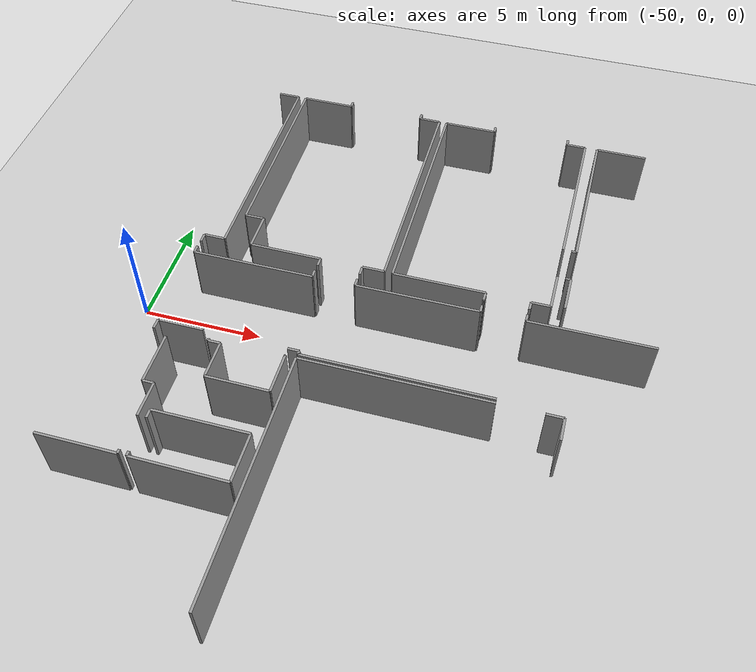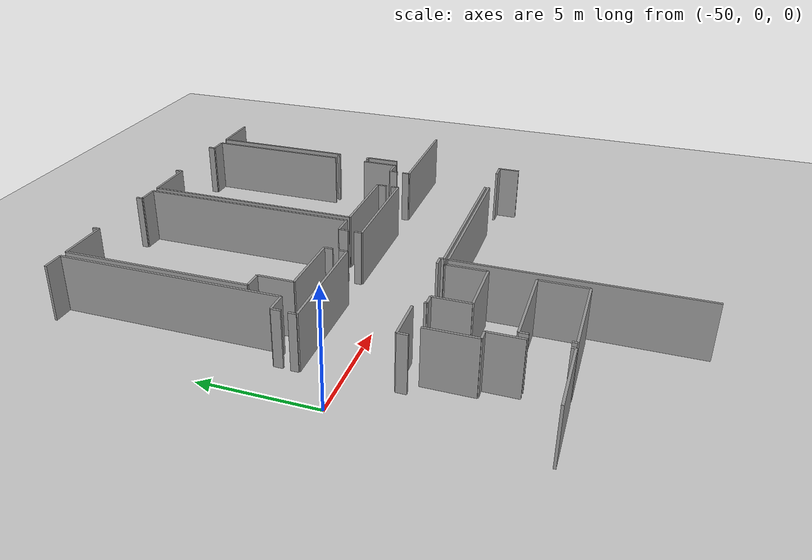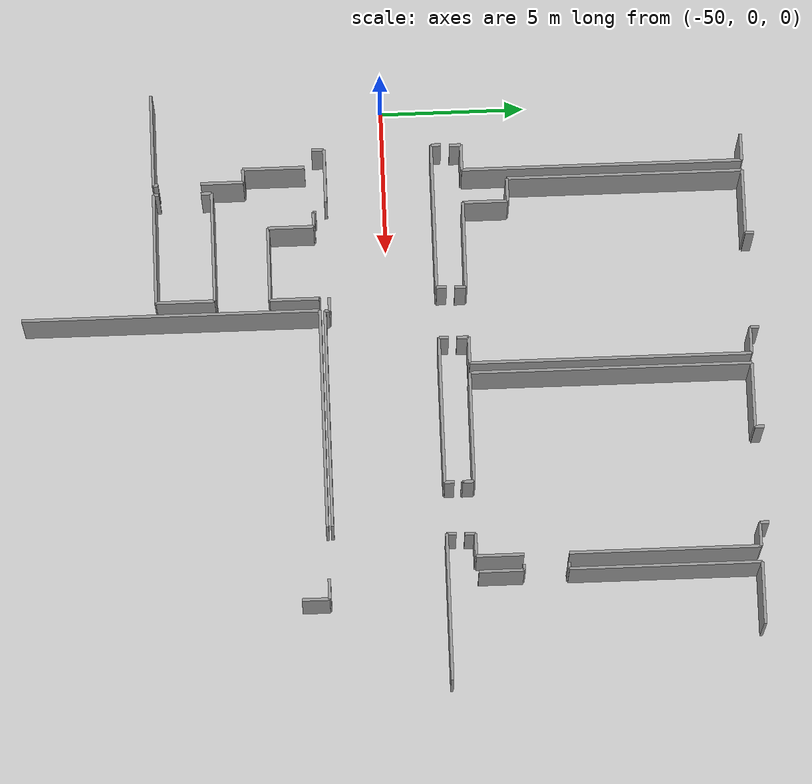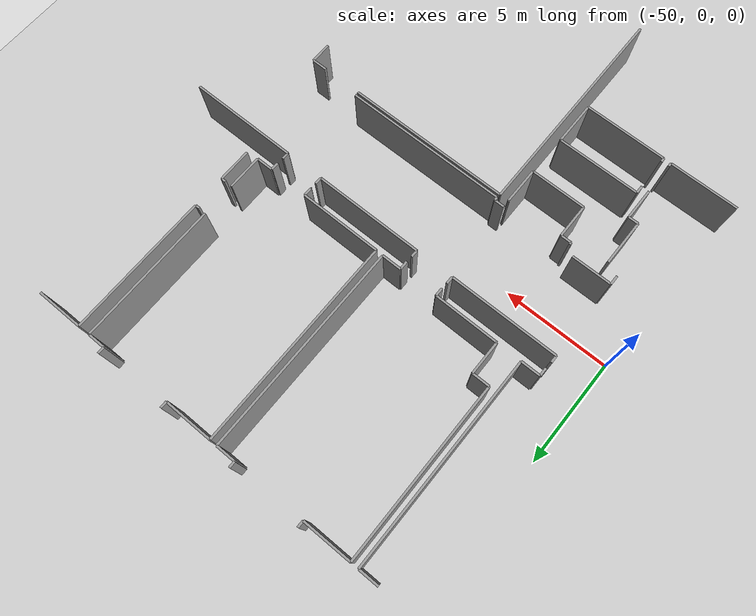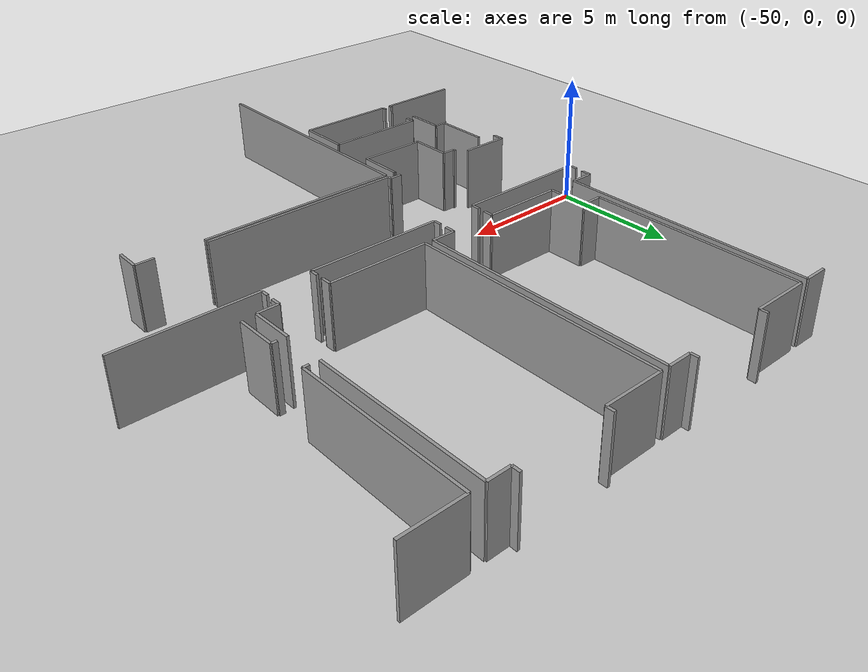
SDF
<sdf version="1.6">
 <world name="default">
  <model name="ground_plane">
   <static>1</static>
   <link name="link">
    <collision name="collision">
     <geometry><plane><normal>0 0 1</normal><size>100 100</size></plane></geometry>
     <surface><friction><ode><mu>100</mu><mu2>50</mu2></ode></friction></surface>
    </collision>
    <visual name="visual">
     <cast_shadows>0</cast_shadows>
     <geometry><plane><normal>0 0 1</normal><size>100 100</size></plane></geometry>
     <material>
      <script><uri>file://media/materials/scripts/gazebo.material</uri><name>Gazebo/Grey</name></script>
     </material>
    </visual>
   </link>
  </model>
  <model name="0510032198_A_40_1_106">
   <static>1</static>
   <link name="Wall_26">
    <collision name="Wall_26_Collision">
     <geometry><box><size>0.918954630347 0.1 2.5</size></box></geometry>
     <pose>0.459477315174 0 1.25 0 0 0</pose>
    </collision>
    <visual name="Wall_26_Visual">
     <pose>0.459477315174 0 1.25 0 0 0</pose>
     <geometry><box><size>0.918954630347 0.1 2.5</size></box></geometry>
     <material>
      <script><uri>file://media/materials/scripts/gazebo.material</uri><name>Gazebo/Grey</name></script>
      <ambient>1 1 1 1</ambient>
     </material>
    </visual>
    <pose>19.4164580925 -0.310892019972 0 0 0 0.0</pose>
   </link>
   <link name="Wall_27">
    <collision name="Wall_27_Collision">
     <geometry><box><size>9.65836181377 0.1 2.5</size></box></geometry>
     <pose>4.82918090688 0 1.25 0 0 0</pose>
    </collision>
    <visual name="Wall_27_Visual">
     <pose>4.82918090688 0 1.25 0 0 0</pose>
     <geometry><box><size>9.65836181377 0.1 2.5</size></box></geometry>
     <material>
      <script><uri>file://media/materials/scripts/gazebo.material</uri><name>Gazebo/Grey</name></script>
      <ambient>1 1 1 1</ambient>
     </material>
    </visual>
    <pose>20.3354127228 -0.310892019972 0 0 0 -1.57079632679</pose>
   </link>
   <link name="Wall_28">
    <collision name="Wall_28_Collision">
     <geometry><box><size>0.886810911078 0.1 2.5</size></box></geometry>
     <pose>0.443405455539 0 1.25 0 0 0</pose>
    </collision>
    <visual name="Wall_28_Visual">
     <pose>0.443405455539 0 1.25 0 0 0</pose>
     <geometry><box><size>0.886810911078 0.1 2.5</size></box></geometry>
     <material>
      <script><uri>file://media/materials/scripts/gazebo.material</uri><name>Gazebo/Grey</name></script>
      <ambient>1 1 1 1</ambient>
     </material>
    </visual>
    <pose>20.3354127228 -9.96925383374 0 0 0 3.14159265359</pose>
   </link>
   <link name="Wall_29">
    <collision name="Wall_29_Collision">
     <geometry><box><size>0.390044340546 0.1 2.5</size></box></geometry>
     <pose>0.195022170273 0 1.25 0 0 0</pose>
    </collision>
    <visual name="Wall_29_Visual">
     <pose>0.195022170273 0 1.25 0 0 0</pose>
     <geometry><box><size>0.390044340546 0.1 2.5</size></box></geometry>
     <material>
      <script><uri>file://media/materials/scripts/gazebo.material</uri><name>Gazebo/Grey</name></script>
      <ambient>1 1 1 1</ambient>
     </material>
    </visual>
    <pose>19.4486018117 -9.96925383374 0 0 0 -1.57079632679</pose>
   </link>
   <link name="Wall_32">
    <collision name="Wall_32_Collision">
     <geometry><box><size>1.54543953042 0.1 2.5</size></box></geometry>
     <pose>0.772719765211 0 1.25 0 0 0</pose>
    </collision>
    <visual name="Wall_32_Visual">
     <pose>0.772719765211 0 1.25 0 0 0</pose>
     <geometry><box><size>1.54543953042 0.1 2.5</size></box></geometry>
     <material>
      <script><uri>file://media/materials/scripts/gazebo.material</uri><name>Gazebo/Grey</name></script>
      <ambient>1 1 1 1</ambient>
     </material>
    </visual>
    <pose>21.4966522253 -9.9762415988 0 0 0 1.57079632679</pose>
   </link>
   <link name="Wall_33">
    <collision name="Wall_33_Collision">
     <geometry><box><size>0.802068378457 0.1 2.5</size></box></geometry>
     <pose>0.401034189229 0 1.25 0 0 0</pose>
    </collision>
    <visual name="Wall_33_Visual">
     <pose>0.401034189229 0 1.25 0 0 0</pose>
     <geometry><box><size>0.802068378457 0.1 2.5</size></box></geometry>
     <material>
      <script><uri>file://media/materials/scripts/gazebo.material</uri><name>Gazebo/Grey</name></script>
      <ambient>1 1 1 1</ambient>
     </material>
    </visual>
    <pose>21.4966522253 -8.43080206838 0 0 0 3.14159265359</pose>
   </link>
   <link name="Wall_34">
    <collision name="Wall_34_Collision">
     <geometry><box><size>8.1174960932 0.1 2.5</size></box></geometry>
     <pose>4.0587480466 0 1.25 0 0 0</pose>
    </collision>
    <visual name="Wall_34_Visual">
     <pose>4.0587480466 0 1.25 0 0 0</pose>
     <geometry><box><size>8.1174960932 0.1 2.5</size></box></geometry>
     <material>
      <script><uri>file://media/materials/scripts/gazebo.material</uri><name>Gazebo/Grey</name></script>
      <ambient>1 1 1 1</ambient>
     </material>
    </visual>
    <pose>20.6945838468 -8.43080206838 0 0 0 1.57079632679</pose>
   </link>
   <link name="Wall_35">
    <collision name="Wall_35_Collision">
     <geometry><box><size>2.23036755644 0.1 2.5</size></box></geometry>
     <pose>1.11518377822 0 1.25 0 0 0</pose>
    </collision>
    <visual name="Wall_35_Visual">
     <pose>1.11518377822 0 1.25 0 0 0</pose>
     <geometry><box><size>2.23036755644 0.1 2.5</size></box></geometry>
     <material>
      <script><uri>file://media/materials/scripts/gazebo.material</uri><name>Gazebo/Grey</name></script>
      <ambient>1 1 1 1</ambient>
     </material>
    </visual>
    <pose>20.6945838468 -0.313305975174 0 0 0 0.0</pose>
   </link>
   <link name="Wall_36">
    <collision name="Wall_36_Collision">
     <geometry><box><size>0.296789439581 0.1 2.5</size></box></geometry>
     <pose>0.148394719791 0 1.25 0 0 0</pose>
    </collision>
    <visual name="Wall_36_Visual">
     <pose>0.148394719791 0 1.25 0 0 0</pose>
     <geometry><box><size>0.296789439581 0.1 2.5</size></box></geometry>
     <material>
      <script><uri>file://media/materials/scripts/gazebo.material</uri><name>Gazebo/Grey</name></script>
      <ambient>1 1 1 1</ambient>
     </material>
    </visual>
    <pose>22.9249514033 -0.313305975174 0 0 0 1.57079632679</pose>
   </link>
   <link name="Wall_37">
    <collision name="Wall_37_Collision">
     <geometry><box><size>0.292977931367 0.1 2.5</size></box></geometry>
     <pose>0.146488965684 0 1.25 0 0 0</pose>
    </collision>
    <visual name="Wall_37_Visual">
     <pose>0.146488965684 0 1.25 0 0 0</pose>
     <geometry><box><size>0.292977931367 0.1 2.5</size></box></geometry>
     <material>
      <script><uri>file://media/materials/scripts/gazebo.material</uri><name>Gazebo/Grey</name></script>
      <ambient>1 1 1 1</ambient>
     </material>
    </visual>
    <pose>26.2569718838 -0.0165165355931 0 0 0 -1.57079632679</pose>
   </link>
   <link name="Wall_38">
    <collision name="Wall_38_Collision">
     <geometry><box><size>0.907520105706 0.1 2.5</size></box></geometry>
     <pose>0.453760052853 0 1.25 0 0 0</pose>
    </collision>
    <visual name="Wall_38_Visual">
     <pose>0.453760052853 0 1.25 0 0 0</pose>
     <geometry><box><size>0.907520105706 0.1 2.5</size></box></geometry>
     <material>
      <script><uri>file://media/materials/scripts/gazebo.material</uri><name>Gazebo/Grey</name></script>
      <ambient>1 1 1 1</ambient>
     </material>
    </visual>
    <pose>26.2569718838 -0.309494466961 0 0 0 0.0</pose>
   </link>
   <link name="Wall_39">
    <collision name="Wall_39_Collision">
     <geometry><box><size>9.65429620501 0.1 2.5</size></box></geometry>
     <pose>4.8271481025 0 1.25 0 0 0</pose>
    </collision>
    <visual name="Wall_39_Visual">
     <pose>4.8271481025 0 1.25 0 0 0</pose>
     <geometry><box><size>9.65429620501 0.1 2.5</size></box></geometry>
     <material>
      <script><uri>file://media/materials/scripts/gazebo.material</uri><name>Gazebo/Grey</name></script>
      <ambient>1 1 1 1</ambient>
     </material>
    </visual>
    <pose>27.1644919895 -0.309494466961 0 0 0 -1.57079632679</pose>
   </link>
   <link name="Wall_40">
    <collision name="Wall_40_Collision">
     <geometry><box><size>0.910442262003 0.1 2.5</size></box></geometry>
     <pose>0.455221131002 0 1.25 0 0 0</pose>
    </collision>
    <visual name="Wall_40_Visual">
     <pose>0.455221131002 0 1.25 0 0 0</pose>
     <geometry><box><size>0.910442262003 0.1 2.5</size></box></geometry>
     <material>
      <script><uri>file://media/materials/scripts/gazebo.material</uri><name>Gazebo/Grey</name></script>
      <ambient>1 1 1 1</ambient>
     </material>
    </visual>
    <pose>27.1644919895 -9.96379067197 0 0 0 3.14159265359</pose>
   </link>
   <link name="Wall_41">
    <collision name="Wall_41_Collision">
     <geometry><box><size>0.406433825865 0.1 2.5</size></box></geometry>
     <pose>0.203216912932 0 1.25 0 0 0</pose>
    </collision>
    <visual name="Wall_41_Visual">
     <pose>0.203216912932 0 1.25 0 0 0</pose>
     <geometry><box><size>0.406433825865 0.1 2.5</size></box></geometry>
     <material>
      <script><uri>file://media/materials/scripts/gazebo.material</uri><name>Gazebo/Grey</name></script>
      <ambient>1 1 1 1</ambient>
     </material>
    </visual>
    <pose>26.2540497275 -9.96379067197 0 0 0 -1.57079632679</pose>
   </link>
   <link name="Wall_42">
    <collision name="Wall_42_Collision">
     <geometry><box><size>0.377212262892 0.1 2.5</size></box></geometry>
     <pose>0.188606131446 0 1.25 0 0 0</pose>
    </collision>
    <visual name="Wall_42_Visual">
     <pose>0.188606131446 0 1.25 0 0 0</pose>
     <geometry><box><size>0.377212262892 0.1 2.5</size></box></geometry>
     <material>
      <script><uri>file://media/materials/scripts/gazebo.material</uri><name>Gazebo/Grey</name></script>
      <ambient>1 1 1 1</ambient>
     </material>
    </visual>
    <pose>24.4847476146 -10.3702244978 0 0 0 1.57079632679</pose>
   </link>
   <link name="Wall_43">
    <collision name="Wall_43_Collision">
     <geometry><box><size>2.98814245143 0.1 2.5</size></box></geometry>
     <pose>1.49407122572 0 1.25 0 0 0</pose>
    </collision>
    <visual name="Wall_43_Visual">
     <pose>1.49407122572 0 1.25 0 0 0</pose>
     <geometry><box><size>2.98814245143 0.1 2.5</size></box></geometry>
     <material>
      <script><uri>file://media/materials/scripts/gazebo.material</uri><name>Gazebo/Grey</name></script>
      <ambient>1 1 1 1</ambient>
     </material>
    </visual>
    <pose>24.4847476146 -9.99301223494 0 0 0 3.135980229</pose>
   </link>
   <link name="Wall_44">
    <collision name="Wall_44_Collision">
     <geometry><box><size>9.6577265624 0.1 2.5</size></box></geometry>
     <pose>4.8288632812 0 1.25 0 0 0</pose>
    </collision>
    <visual name="Wall_44_Visual">
     <pose>4.8288632812 0 1.25 0 0 0</pose>
     <geometry><box><size>9.6577265624 0.1 2.5</size></box></geometry>
     <material>
      <script><uri>file://media/materials/scripts/gazebo.material</uri><name>Gazebo/Grey</name></script>
      <ambient>1 1 1 1</ambient>
     </material>
    </visual>
    <pose>27.5029539189 -9.9762415988 0 0 0 1.57079632679</pose>
   </link>
   <link name="Wall_45">
    <collision name="Wall_45_Collision">
     <geometry><box><size>2.23900697506 0.1 2.5</size></box></geometry>
     <pose>1.11950348753 0 1.25 0 0 0</pose>
    </collision>
    <visual name="Wall_45_Visual">
     <pose>1.11950348753 0 1.25 0 0 0</pose>
     <geometry><box><size>2.23900697506 0.1 2.5</size></box></geometry>
     <material>
      <script><uri>file://media/materials/scripts/gazebo.material</uri><name>Gazebo/Grey</name></script>
      <ambient>1 1 1 1</ambient>
     </material>
    </visual>
    <pose>27.5029539189 -0.3185150364 0 0 0 0.0</pose>
   </link>
   <link name="Wall_46">
    <collision name="Wall_46_Collision">
     <geometry><box><size>0.307588712854 0.1 2.5</size></box></geometry>
     <pose>0.153794356427 0 1.25 0 0 0</pose>
    </collision>
    <visual name="Wall_46_Visual">
     <pose>0.153794356427 0 1.25 0 0 0</pose>
     <geometry><box><size>0.307588712854 0.1 2.5</size></box></geometry>
     <material>
      <script><uri>file://media/materials/scripts/gazebo.material</uri><name>Gazebo/Grey</name></script>
      <ambient>1 1 1 1</ambient>
     </material>
    </visual>
    <pose>29.7419608939 -0.3185150364 0 0 0 1.57079632679</pose>
   </link>
   <link name="Wall_47">
    <collision name="Wall_47_Collision">
     <geometry><box><size>0.308096913949 0.1 2.5</size></box></geometry>
     <pose>0.154048456974 0 1.25 0 0 0</pose>
    </collision>
    <visual name="Wall_47_Visual">
     <pose>0.154048456974 0 1.25 0 0 0</pose>
     <geometry><box><size>0.308096913949 0.1 2.5</size></box></geometry>
     <material>
      <script><uri>file://media/materials/scripts/gazebo.material</uri><name>Gazebo/Grey</name></script>
      <ambient>1 1 1 1</ambient>
     </material>
    </visual>
    <pose>33.0727108717 -0.0109263235462 0 0 0 -1.57079632679</pose>
   </link>
   <link name="Wall_48">
    <collision name="Wall_48_Collision">
     <geometry><box><size>0.811978299813 0.1 2.5</size></box></geometry>
     <pose>0.405989149907 0 1.25 0 0 0</pose>
    </collision>
    <visual name="Wall_48_Visual">
     <pose>0.405989149907 0 1.25 0 0 0</pose>
     <geometry><box><size>0.811978299813 0.1 2.5</size></box></geometry>
     <material>
      <script><uri>file://media/materials/scripts/gazebo.material</uri><name>Gazebo/Grey</name></script>
      <ambient>1 1 1 1</ambient>
     </material>
    </visual>
    <pose>33.0727108717 -0.319023237495 0 0 0 0.0</pose>
   </link>
   <link name="Wall_49">
    <collision name="Wall_49_Collision">
     <geometry><box><size>6.51615444231 0.1 2.5</size></box></geometry>
     <pose>3.25807722116 0 1.25 0 0 0</pose>
    </collision>
    <visual name="Wall_49_Visual">
     <pose>3.25807722116 0 1.25 0 0 0</pose>
     <geometry><box><size>6.51615444231 0.1 2.5</size></box></geometry>
     <material>
      <script><uri>file://media/materials/scripts/gazebo.material</uri><name>Gazebo/Grey</name></script>
      <ambient>1 1 1 1</ambient>
     </material>
    </visual>
    <pose>33.8846891715 -0.319023237495 0 0 0 -1.57079632679</pose>
   </link>
   <link name="Wall_50">
    <collision name="Wall_50_Collision">
     <geometry><box><size>1.6211614936 0.1 2.5</size></box></geometry>
     <pose>0.810580746802 0 1.25 0 0 0</pose>
    </collision>
    <visual name="Wall_50_Visual">
     <pose>0.810580746802 0 1.25 0 0 0</pose>
     <geometry><box><size>1.6211614936 0.1 2.5</size></box></geometry>
     <material>
      <script><uri>file://media/materials/scripts/gazebo.material</uri><name>Gazebo/Grey</name></script>
      <ambient>1 1 1 1</ambient>
     </material>
    </visual>
    <pose>33.8846891715 -8.38061721023 0 0 0 -1.57079632679</pose>
   </link>
   <link name="Wall_51">
    <collision name="Wall_51_Collision">
     <geometry><box><size>0.778437027532 0.1 2.5</size></box></geometry>
     <pose>0.389218513766 0 1.25 0 0 0</pose>
    </collision>
    <visual name="Wall_51_Visual">
     <pose>0.389218513766 0 1.25 0 0 0</pose>
     <geometry><box><size>0.778437027532 0.1 2.5</size></box></geometry>
     <material>
      <script><uri>file://media/materials/scripts/gazebo.material</uri><name>Gazebo/Grey</name></script>
      <ambient>1 1 1 1</ambient>
     </material>
    </visual>
    <pose>33.8846891715 -10.0017787038 0 0 0 3.14159265359</pose>
   </link>
   <link name="Wall_52">
    <collision name="Wall_52_Collision">
     <geometry><box><size>0.365015436608 0.1 2.5</size></box></geometry>
     <pose>0.182507718304 0 1.25 0 0 0</pose>
    </collision>
    <visual name="Wall_52_Visual">
     <pose>0.182507718304 0 1.25 0 0 0</pose>
     <geometry><box><size>0.365015436608 0.1 2.5</size></box></geometry>
     <material>
      <script><uri>file://media/materials/scripts/gazebo.material</uri><name>Gazebo/Grey</name></script>
      <ambient>1 1 1 1</ambient>
     </material>
    </visual>
    <pose>33.106252144 -10.0017787038 0 0 0 -1.57079632679</pose>
   </link>
   <link name="Wall_53">
    <collision name="Wall_53_Collision">
     <geometry><box><size>0.0315084679007 0.1 2.5</size></box></geometry>
     <pose>0.0157542339504 0 1.25 0 0 0</pose>
    </collision>
    <visual name="Wall_53_Visual">
     <pose>0.0157542339504 0 1.25 0 0 0</pose>
     <geometry><box><size>0.0315084679007 0.1 2.5</size></box></geometry>
     <material>
      <script><uri>file://media/materials/scripts/gazebo.material</uri><name>Gazebo/Grey</name></script>
      <ambient>1 1 1 1</ambient>
     </material>
    </visual>
    <pose>31.3260237076 -10.3667941404 0 0 0 3.14159265359</pose>
   </link>
   <link name="Wall_54">
    <collision name="Wall_54_Collision">
     <geometry><box><size>0.382675424666 0.1 2.5</size></box></geometry>
     <pose>0.191337712333 0 1.25 0 0 0</pose>
    </collision>
    <visual name="Wall_54_Visual">
     <pose>0.191337712333 0 1.25 0 0 0</pose>
     <geometry><box><size>0.382675424666 0.1 2.5</size></box></geometry>
     <material>
      <script><uri>file://media/materials/scripts/gazebo.material</uri><name>Gazebo/Grey</name></script>
      <ambient>1 1 1 1</ambient>
     </material>
    </visual>
    <pose>31.2945152397 -10.3667941404 0 0 0 1.57079632679</pose>
   </link>
   <link name="Wall_55">
    <collision name="Wall_55_Collision">
     <geometry><box><size>3.79156950332 0.1 2.5</size></box></geometry>
     <pose>1.89578475166 0 1.25 0 0 0</pose>
    </collision>
    <visual name="Wall_55_Visual">
     <pose>1.89578475166 0 1.25 0 0 0</pose>
     <geometry><box><size>3.79156950332 0.1 2.5</size></box></geometry>
     <material>
      <script><uri>file://media/materials/scripts/gazebo.material</uri><name>Gazebo/Grey</name></script>
      <ambient>1 1 1 1</ambient>
     </material>
    </visual>
    <pose>31.2945152397 -9.98411871578 0 0 0 3.13951511746</pose>
   </link>
   <link name="Wall_56">
    <collision name="Wall_56_Collision">
     <geometry><box><size>1.53705421235 0.1 2.5</size></box></geometry>
     <pose>0.768527106176 0 1.25 0 0 0</pose>
    </collision>
    <visual name="Wall_56_Visual">
     <pose>0.768527106176 0 1.25 0 0 0</pose>
     <geometry><box><size>1.53705421235 0.1 2.5</size></box></geometry>
     <material>
      <script><uri>file://media/materials/scripts/gazebo.material</uri><name>Gazebo/Grey</name></script>
      <ambient>1 1 1 1</ambient>
     </material>
    </visual>
    <pose>34.4223659302 -9.93444205872 0 0 0 1.57079632679</pose>
   </link>
   <link name="Wall_57">
    <collision name="Wall_57_Collision">
     <geometry><box><size>0.201755834784 0.1 2.5</size></box></geometry>
     <pose>0.100877917392 0 1.25 0 0 0</pose>
    </collision>
    <visual name="Wall_57_Visual">
     <pose>0.100877917392 0 1.25 0 0 0</pose>
     <geometry><box><size>0.201755834784 0.1 2.5</size></box></geometry>
     <material>
      <script><uri>file://media/materials/scripts/gazebo.material</uri><name>Gazebo/Grey</name></script>
      <ambient>1 1 1 1</ambient>
     </material>
    </visual>
    <pose>34.4223659302 -8.39738784637 0 0 0 3.14159265359</pose>
   </link>
   <link name="Wall_58">
    <collision name="Wall_58_Collision">
     <geometry><box><size>0.206583745188 0.1 2.5</size></box></geometry>
     <pose>0.103291872594 0 1.25 0 0 0</pose>
    </collision>
    <visual name="Wall_58_Visual">
     <pose>0.103291872594 0 1.25 0 0 0</pose>
     <geometry><box><size>0.206583745188 0.1 2.5</size></box></geometry>
     <material>
      <script><uri>file://media/materials/scripts/gazebo.material</uri><name>Gazebo/Grey</name></script>
      <ambient>1 1 1 1</ambient>
     </material>
    </visual>
    <pose>34.2206100954 -6.85487047225 0 0 0 0.0</pose>
   </link>
   <link name="Wall_59">
    <collision name="Wall_59_Collision">
     <geometry><box><size>6.54728175939 0.1 2.5</size></box></geometry>
     <pose>3.2736408797 0 1.25 0 0 0</pose>
    </collision>
    <visual name="Wall_59_Visual">
     <pose>3.2736408797 0 1.25 0 0 0</pose>
     <geometry><box><size>6.54728175939 0.1 2.5</size></box></geometry>
     <material>
      <script><uri>file://media/materials/scripts/gazebo.material</uri><name>Gazebo/Grey</name></script>
      <ambient>1 1 1 1</ambient>
     </material>
    </visual>
    <pose>34.4271938406 -6.85487047225 0 0 0 1.57079632679</pose>
   </link>
   <link name="Wall_60">
    <collision name="Wall_60_Collision">
     <geometry><box><size>2.14219466643 0.1 2.5</size></box></geometry>
     <pose>1.07109733321 0 1.25 0 0 0</pose>
    </collision>
    <visual name="Wall_60_Visual">
     <pose>1.07109733321 0 1.25 0 0 0</pose>
     <geometry><box><size>2.14219466643 0.1 2.5</size></box></geometry>
     <material>
      <script><uri>file://media/materials/scripts/gazebo.material</uri><name>Gazebo/Grey</name></script>
      <ambient>1 1 1 1</ambient>
     </material>
    </visual>
    <pose>34.4271938406 -0.307588712854 0 0 0 0.0</pose>
   </link>
   <link name="Wall_265">
    <collision name="Wall_265_Collision">
     <geometry><box><size>10.2305962469 0.1 2.5</size></box></geometry>
     <pose>5.11529812347 0 1.25 0 0 0</pose>
    </collision>
    <visual name="Wall_265_Visual">
     <pose>5.11529812347 0 1.25 0 0 0</pose>
     <geometry><box><size>10.2305962469 0.1 2.5</size></box></geometry>
     <material>
      <script><uri>file://media/materials/scripts/gazebo.material</uri><name>Gazebo/Grey</name></script>
      <ambient>1 1 1 1</ambient>
     </material>
    </visual>
    <pose>25.129908905 -25.2567050782 0 0 0 1.57079632679</pose>
   </link>
   <link name="Wall_266">
    <collision name="Wall_266_Collision">
     <geometry><box><size>7.56101589399 0.1 2.5</size></box></geometry>
     <pose>3.78050794699 0 1.25 0 0 0</pose>
    </collision>
    <visual name="Wall_266_Visual">
     <pose>3.78050794699 0 1.25 0 0 0</pose>
     <geometry><box><size>7.56101589399 0.1 2.5</size></box></geometry>
     <material>
      <script><uri>file://media/materials/scripts/gazebo.material</uri><name>Gazebo/Grey</name></script>
      <ambient>1 1 1 1</ambient>
     </material>
    </visual>
    <pose>25.129908905 -15.0261088313 0 0 0 0.0</pose>
   </link>
   <link name="Wall_267">
    <collision name="Wall_267_Collision">
     <geometry><box><size>0.685055076294 0.1 2.5</size></box></geometry>
     <pose>0.342527538147 0 1.25 0 0 0</pose>
    </collision>
    <visual name="Wall_267_Visual">
     <pose>0.342527538147 0 1.25 0 0 0</pose>
     <geometry><box><size>0.685055076294 0.1 2.5</size></box></geometry>
     <material>
      <script><uri>file://media/materials/scripts/gazebo.material</uri><name>Gazebo/Grey</name></script>
      <ambient>1 1 1 1</ambient>
     </material>
    </visual>
    <pose>34.4950386868 -15.0261088313 0 0 0 0.0</pose>
   </link>
   <link name="Wall_268">
    <collision name="Wall_268_Collision">
     <geometry><box><size>0.947795042498 0.1 2.5</size></box></geometry>
     <pose>0.473897521249 0 1.25 0 0 0</pose>
    </collision>
    <visual name="Wall_268_Visual">
     <pose>0.473897521249 0 1.25 0 0 0</pose>
     <geometry><box><size>0.947795042498 0.1 2.5</size></box></geometry>
     <material>
      <script><uri>file://media/materials/scripts/gazebo.material</uri><name>Gazebo/Grey</name></script>
      <ambient>1 1 1 1</ambient>
     </material>
    </visual>
    <pose>35.1800937631 -15.0261088313 0 0 0 -1.57079632679</pose>
   </link>
   <link name="Wall_287">
    <collision name="Wall_287_Collision">
     <geometry><box><size>2.12809208604 0.1 2.5</size></box></geometry>
     <pose>1.06404604302 0 1.25 0 0 0</pose>
    </collision>
    <visual name="Wall_287_Visual">
     <pose>1.06404604302 0 1.25 0 0 0</pose>
     <geometry><box><size>2.12809208604 0.1 2.5</size></box></geometry>
     <material>
      <script><uri>file://media/materials/scripts/gazebo.material</uri><name>Gazebo/Grey</name></script>
      <ambient>1 1 1 1</ambient>
     </material>
    </visual>
    <pose>20.0515824112 -15.3855340558 0 0 0 -1.57079632679</pose>
   </link>
   <link name="Wall_288">
    <collision name="Wall_288_Collision">
     <geometry><box><size>0.454077678537 0.1 2.5</size></box></geometry>
     <pose>0.227038839269 0 1.25 0 0 0</pose>
    </collision>
    <visual name="Wall_288_Visual">
     <pose>0.227038839269 0 1.25 0 0 0</pose>
     <geometry><box><size>0.454077678537 0.1 2.5</size></box></geometry>
     <material>
      <script><uri>file://media/materials/scripts/gazebo.material</uri><name>Gazebo/Grey</name></script>
      <ambient>1 1 1 1</ambient>
     </material>
    </visual>
    <pose>20.0515824112 -17.5136261419 0 0 0 0.0</pose>
   </link>
   <link name="Wall_289">
    <collision name="Wall_289_Collision">
     <geometry><box><size>1.46082404808 0.1 2.5</size></box></geometry>
     <pose>0.730412024038 0 1.25 0 0 0</pose>
    </collision>
    <visual name="Wall_289_Visual">
     <pose>0.730412024038 0 1.25 0 0 0</pose>
     <geometry><box><size>1.46082404808 0.1 2.5</size></box></geometry>
     <material>
      <script><uri>file://media/materials/scripts/gazebo.material</uri><name>Gazebo/Grey</name></script>
      <ambient>1 1 1 1</ambient>
     </material>
    </visual>
    <pose>20.5056600897 -17.5136261419 0 0 0 -1.57079632679</pose>
   </link>
   <link name="Wall_290">
    <collision name="Wall_290_Collision">
     <geometry><box><size>0.164148953741 0.1 2.5</size></box></geometry>
     <pose>0.0820744768705 0 1.25 0 0 0</pose>
    </collision>
    <visual name="Wall_290_Visual">
     <pose>0.0820744768705 0 1.25 0 0 0</pose>
     <geometry><box><size>0.164148953741 0.1 2.5</size></box></geometry>
     <material>
      <script><uri>file://media/materials/scripts/gazebo.material</uri><name>Gazebo/Grey</name></script>
      <ambient>1 1 1 1</ambient>
     </material>
    </visual>
    <pose>20.5056600897 -20.444548908 0 0 0 -1.57079632679</pose>
   </link>
   <link name="Wall_291">
    <collision name="Wall_291_Collision">
     <geometry><box><size>3.20421154227 0.1 2.5</size></box></geometry>
     <pose>1.60210577114 0 1.25 0 0 0</pose>
    </collision>
    <visual name="Wall_291_Visual">
     <pose>1.60210577114 0 1.25 0 0 0</pose>
     <geometry><box><size>3.20421154227 0.1 2.5</size></box></geometry>
     <material>
      <script><uri>file://media/materials/scripts/gazebo.material</uri><name>Gazebo/Grey</name></script>
      <ambient>1 1 1 1</ambient>
     </material>
    </visual>
    <pose>20.5056600897 -20.6086978617 0 0 0 -3.14008591405</pose>
   </link>
   <link name="Wall_292">
    <collision name="Wall_292_Collision">
     <geometry><box><size>0.186255701381 0.1 2.5</size></box></geometry>
     <pose>0.0931278506905 0 1.25 0 0 0</pose>
    </collision>
    <visual name="Wall_292_Visual">
     <pose>0.0931278506905 0 1.25 0 0 0</pose>
     <geometry><box><size>0.186255701381 0.1 2.5</size></box></geometry>
     <material>
      <script><uri>file://media/materials/scripts/gazebo.material</uri><name>Gazebo/Grey</name></script>
      <ambient>1 1 1 1</ambient>
     </material>
    </visual>
    <pose>20.8549212924 -20.6135257721 0 0 0 1.57079632679</pose>
   </link>
   <link name="Wall_293">
    <collision name="Wall_293_Collision">
     <geometry><box><size>0.363109682501 0.1 2.5</size></box></geometry>
     <pose>0.181554841251 0 1.25 0 0 0</pose>
    </collision>
    <visual name="Wall_293_Visual">
     <pose>0.181554841251 0 1.25 0 0 0</pose>
     <geometry><box><size>0.363109682501 0.1 2.5</size></box></geometry>
     <material>
      <script><uri>file://media/materials/scripts/gazebo.material</uri><name>Gazebo/Grey</name></script>
      <ambient>1 1 1 1</ambient>
     </material>
    </visual>
    <pose>20.8549212924 -18.9811838545 0 0 0 1.57079632679</pose>
   </link>
   <link name="Wall_294">
    <collision name="Wall_294_Collision">
     <geometry><box><size>3.81468447065 0.1 2.5</size></box></geometry>
     <pose>1.90734223532 0 1.25 0 0 0</pose>
    </collision>
    <visual name="Wall_294_Visual">
     <pose>1.90734223532 0 1.25 0 0 0</pose>
     <geometry><box><size>3.81468447065 0.1 2.5</size></box></geometry>
     <material>
      <script><uri>file://media/materials/scripts/gazebo.material</uri><name>Gazebo/Grey</name></script>
      <ambient>1 1 1 1</ambient>
     </material>
    </visual>
    <pose>20.8549212924 -18.6180741719 0 0 0 0.0</pose>
   </link>
   <link name="Wall_295">
    <collision name="Wall_295_Collision">
     <geometry><box><size>2.01260338716 0.1 2.5</size></box></geometry>
     <pose>1.00630169358 0 1.25 0 0 0</pose>
    </collision>
    <visual name="Wall_295_Visual">
     <pose>1.00630169358 0 1.25 0 0 0</pose>
     <geometry><box><size>2.01260338716 0.1 2.5</size></box></geometry>
     <material>
      <script><uri>file://media/materials/scripts/gazebo.material</uri><name>Gazebo/Grey</name></script>
      <ambient>1 1 1 1</ambient>
     </material>
    </visual>
    <pose>24.669605763 -18.6180741719 0 0 0 -1.57079632679</pose>
   </link>
   <link name="Wall_296">
    <collision name="Wall_296_Collision">
     <geometry><box><size>3.81472302984 0.1 2.5</size></box></geometry>
     <pose>1.90736151492 0 1.25 0 0 0</pose>
    </collision>
    <visual name="Wall_296_Visual">
     <pose>1.90736151492 0 1.25 0 0 0</pose>
     <geometry><box><size>3.81472302984 0.1 2.5</size></box></geometry>
     <material>
      <script><uri>file://media/materials/scripts/gazebo.material</uri><name>Gazebo/Grey</name></script>
      <ambient>1 1 1 1</ambient>
     </material>
    </visual>
    <pose>24.669605763 -20.6306775591 0 0 0 3.13709643077</pose>
   </link>
   <link name="Wall_297">
    <collision name="Wall_297_Collision">
     <geometry><box><size>1.57885375243 0.1 2.5</size></box></geometry>
     <pose>0.789426876215 0 1.25 0 0 0</pose>
    </collision>
    <visual name="Wall_297_Visual">
     <pose>0.789426876215 0 1.25 0 0 0</pose>
     <geometry><box><size>1.57885375243 0.1 2.5</size></box></geometry>
     <material>
      <script><uri>file://media/materials/scripts/gazebo.material</uri><name>Gazebo/Grey</name></script>
      <ambient>1 1 1 1</ambient>
     </material>
    </visual>
    <pose>22.1649366654 -16.7177832268 0 0 0 1.57079632679</pose>
   </link>
   <link name="Wall_298">
    <collision name="Wall_298_Collision">
     <geometry><box><size>0.501213330115 0.1 2.5</size></box></geometry>
     <pose>0.250606665057 0 1.25 0 0 0</pose>
    </collision>
    <visual name="Wall_298_Visual">
     <pose>0.250606665057 0 1.25 0 0 0</pose>
     <geometry><box><size>0.501213330115 0.1 2.5</size></box></geometry>
     <material>
      <script><uri>file://media/materials/scripts/gazebo.material</uri><name>Gazebo/Grey</name></script>
      <ambient>1 1 1 1</ambient>
     </material>
    </visual>
    <pose>22.1649366654 -15.1389294744 0 0 0 3.14159265359</pose>
   </link>
   <link name="Wall_299">
    <collision name="Wall_299_Collision">
     <geometry><box><size>0.100242666023 0.1 2.5</size></box></geometry>
     <pose>0.0501213330115 0 1.25 0 0 0</pose>
    </collision>
    <visual name="Wall_299_Visual">
     <pose>0.0501213330115 0 1.25 0 0 0</pose>
     <geometry><box><size>0.100242666023 0.1 2.5</size></box></geometry>
     <material>
      <script><uri>file://media/materials/scripts/gazebo.material</uri><name>Gazebo/Grey</name></script>
      <ambient>1 1 1 1</ambient>
     </material>
    </visual>
    <pose>21.6637233353 -15.1389294744 0 0 0 1.57079632679</pose>
   </link>
   <link name="Wall_300">
    <collision name="Wall_300_Collision">
     <geometry><box><size>0.0480250034939 0.1 2.5</size></box></geometry>
     <pose>0.0240125017469 0 1.25 0 0 0</pose>
    </collision>
    <visual name="Wall_300_Visual">
     <pose>0.0240125017469 0 1.25 0 0 0</pose>
     <geometry><box><size>0.0480250034939 0.1 2.5</size></box></geometry>
     <material>
      <script><uri>file://media/materials/scripts/gazebo.material</uri><name>Gazebo/Grey</name></script>
      <ambient>1 1 1 1</ambient>
     </material>
    </visual>
    <pose>24.6618556963 -15.0386868084 0 0 0 0.0</pose>
   </link>
   <link name="Wall_301">
    <collision name="Wall_301_Collision">
     <geometry><box><size>1.68786288734 0.1 2.5</size></box></geometry>
     <pose>0.843931443672 0 1.25 0 0 0</pose>
    </collision>
    <visual name="Wall_301_Visual">
     <pose>0.843931443672 0 1.25 0 0 0</pose>
     <geometry><box><size>1.68786288734 0.1 2.5</size></box></geometry>
     <material>
      <script><uri>file://media/materials/scripts/gazebo.material</uri><name>Gazebo/Grey</name></script>
      <ambient>1 1 1 1</ambient>
     </material>
    </visual>
    <pose>24.7098806998 -15.0386868084 0 0 0 -1.57079632679</pose>
   </link>
   <link name="Wall_302">
    <collision name="Wall_302_Collision">
     <geometry><box><size>2.54495913307 0.1 2.5</size></box></geometry>
     <pose>1.27247956653 0 1.25 0 0 0</pose>
    </collision>
    <visual name="Wall_302_Visual">
     <pose>1.27247956653 0 1.25 0 0 0</pose>
     <geometry><box><size>2.54495913307 0.1 2.5</size></box></geometry>
     <material>
      <script><uri>file://media/materials/scripts/gazebo.material</uri><name>Gazebo/Grey</name></script>
      <ambient>1 1 1 1</ambient>
     </material>
    </visual>
    <pose>24.7098806998 -16.7265496957 0 0 0 3.13814800644</pose>
   </link>
   <link name="Wall_318">
    <collision name="Wall_318_Collision">
     <geometry><box><size>0.333379918434 0.1 2.5</size></box></geometry>
     <pose>0.166689959217 0 1.25 0 0 0</pose>
    </collision>
    <visual name="Wall_318_Visual">
     <pose>0.166689959217 0 1.25 0 0 0</pose>
     <geometry><box><size>0.333379918434 0.1 2.5</size></box></geometry>
     <material>
      <script><uri>file://media/materials/scripts/gazebo.material</uri><name>Gazebo/Grey</name></script>
      <ambient>1 1 1 1</ambient>
     </material>
    </visual>
    <pose>19.4191261482 -10.6614237254 0 0 0 -1.57079632679</pose>
   </link>
   <link name="Wall_319">
    <collision name="Wall_319_Collision">
     <geometry><box><size>5.04300651768 0.1 2.5</size></box></geometry>
     <pose>2.52150325884 0 1.25 0 0 0</pose>
    </collision>
    <visual name="Wall_319_Visual">
     <pose>2.52150325884 0 1.25 0 0 0</pose>
     <geometry><box><size>5.04300651768 0.1 2.5</size></box></geometry>
     <material>
      <script><uri>file://media/materials/scripts/gazebo.material</uri><name>Gazebo/Grey</name></script>
      <ambient>1 1 1 1</ambient>
     </material>
    </visual>
    <pose>19.4191261482 -10.9948036438 0 0 0 0.0</pose>
   </link>
   <link name="Wall_320">
    <collision name="Wall_320_Collision">
     <geometry><box><size>0.341892286778 0.1 2.5</size></box></geometry>
     <pose>0.170946143389 0 1.25 0 0 0</pose>
    </collision>
    <visual name="Wall_320_Visual">
     <pose>0.170946143389 0 1.25 0 0 0</pose>
     <geometry><box><size>0.341892286778 0.1 2.5</size></box></geometry>
     <material>
      <script><uri>file://media/materials/scripts/gazebo.material</uri><name>Gazebo/Grey</name></script>
      <ambient>1 1 1 1</ambient>
     </material>
    </visual>
    <pose>24.4621326659 -10.9948036438 0 0 0 1.57079632679</pose>
   </link>
   <link name="Wall_321">
    <collision name="Wall_321_Collision">
     <geometry><box><size>0.328679058303 0.1 2.5</size></box></geometry>
     <pose>0.164339529152 0 1.25 0 0 0</pose>
    </collision>
    <visual name="Wall_321_Visual">
     <pose>0.164339529152 0 1.25 0 0 0</pose>
     <geometry><box><size>0.328679058303 0.1 2.5</size></box></geometry>
     <material>
      <script><uri>file://media/materials/scripts/gazebo.material</uri><name>Gazebo/Grey</name></script>
      <ambient>1 1 1 1</ambient>
     </material>
    </visual>
    <pose>26.2374061416 -10.652911357 0 0 0 -1.57079632679</pose>
   </link>
   <link name="Wall_322">
    <collision name="Wall_322_Collision">
     <geometry><box><size>5.05317053958 0.1 2.5</size></box></geometry>
     <pose>2.52658526979 0 1.25 0 0 0</pose>
    </collision>
    <visual name="Wall_322_Visual">
     <pose>2.52658526979 0 1.25 0 0 0</pose>
     <geometry><box><size>5.05317053958 0.1 2.5</size></box></geometry>
     <material>
      <script><uri>file://media/materials/scripts/gazebo.material</uri><name>Gazebo/Grey</name></script>
      <ambient>1 1 1 1</ambient>
     </material>
    </visual>
    <pose>26.2374061416 -10.9815904153 0 0 0 0.0</pose>
   </link>
   <link name="Wall_323">
    <collision name="Wall_323_Collision">
     <geometry><box><size>0.326646253923 0.1 2.5</size></box></geometry>
     <pose>0.163323126961 0 1.25 0 0 0</pose>
    </collision>
    <visual name="Wall_323_Visual">
     <pose>0.163323126961 0 1.25 0 0 0</pose>
     <geometry><box><size>0.326646253923 0.1 2.5</size></box></geometry>
     <material>
      <script><uri>file://media/materials/scripts/gazebo.material</uri><name>Gazebo/Grey</name></script>
      <ambient>1 1 1 1</ambient>
     </material>
    </visual>
    <pose>31.2905766812 -10.9815904153 0 0 0 1.57079632679</pose>
   </link>
   <link name="Wall_324">
    <collision name="Wall_324_Collision">
     <geometry><box><size>0.320928991602 0.1 2.5</size></box></geometry>
     <pose>0.160464495801 0 1.25 0 0 0</pose>
    </collision>
    <visual name="Wall_324_Visual">
     <pose>0.160464495801 0 1.25 0 0 0</pose>
     <geometry><box><size>0.320928991602 0.1 2.5</size></box></geometry>
     <material>
      <script><uri>file://media/materials/scripts/gazebo.material</uri><name>Gazebo/Grey</name></script>
      <ambient>1 1 1 1</ambient>
     </material>
    </visual>
    <pose>33.082112592 -10.6549441614 0 0 0 -1.57079632679</pose>
   </link>
   <link name="Wall_325">
    <collision name="Wall_325_Collision">
     <geometry><box><size>5.01835876456 0.1 2.5</size></box></geometry>
     <pose>2.50917938228 0 1.25 0 0 0</pose>
    </collision>
    <visual name="Wall_325_Visual">
     <pose>2.50917938228 0 1.25 0 0 0</pose>
     <geometry><box><size>5.01835876456 0.1 2.5</size></box></geometry>
     <material>
      <script><uri>file://media/materials/scripts/gazebo.material</uri><name>Gazebo/Grey</name></script>
      <ambient>1 1 1 1</ambient>
     </material>
    </visual>
    <pose>33.082112592 -10.975873153 0 0 0 0.0</pose>
   </link>
   <link name="Wall_379">
    <collision name="Wall_379_Collision">
     <geometry><box><size>7.53408123595 0.1 2.5</size></box></geometry>
     <pose>3.76704061797 0 1.25 0 0 0</pose>
    </collision>
    <visual name="Wall_379_Visual">
     <pose>3.76704061797 0 1.25 0 0 0</pose>
     <geometry><box><size>7.53408123595 0.1 2.5</size></box></geometry>
     <material>
      <script><uri>file://media/materials/scripts/gazebo.material</uri><name>Gazebo/Grey</name></script>
      <ambient>1 1 1 1</ambient>
     </material>
    </visual>
    <pose>32.6841911344 -14.855226213 0 0 0 3.14159265359</pose>
   </link>
   <link name="Wall_380">
    <collision name="Wall_380_Collision">
     <geometry><box><size>0.159829244432 0.1 2.5</size></box></geometry>
     <pose>0.079914622216 0 1.25 0 0 0</pose>
    </collision>
    <visual name="Wall_380_Visual">
     <pose>0.079914622216 0 1.25 0 0 0</pose>
     <geometry><box><size>0.159829244432 0.1 2.5</size></box></geometry>
     <material>
      <script><uri>file://media/materials/scripts/gazebo.material</uri><name>Gazebo/Grey</name></script>
      <ambient>1 1 1 1</ambient>
     </material>
    </visual>
    <pose>25.1501098985 -14.855226213 0 0 0 1.57079632679</pose>
   </link>
   <link name="Wall_381">
    <collision name="Wall_381_Collision">
     <geometry><box><size>0.458778538668 0.1 2.5</size></box></geometry>
     <pose>0.229389269334 0 1.25 0 0 0</pose>
    </collision>
    <visual name="Wall_381_Visual">
     <pose>0.229389269334 0 1.25 0 0 0</pose>
     <geometry><box><size>0.458778538668 0.1 2.5</size></box></geometry>
     <material>
      <script><uri>file://media/materials/scripts/gazebo.material</uri><name>Gazebo/Grey</name></script>
      <ambient>1 1 1 1</ambient>
     </material>
    </visual>
    <pose>25.1501098985 -14.6953969686 0 0 0 3.14159265359</pose>
   </link>
   <link name="Wall_382">
    <collision name="Wall_382_Collision">
     <geometry><box><size>1.85175774054 0.1 2.5</size></box></geometry>
     <pose>0.925878870269 0 1.25 0 0 0</pose>
    </collision>
    <visual name="Wall_382_Visual">
     <pose>0.925878870269 0 1.25 0 0 0</pose>
     <geometry><box><size>1.85175774054 0.1 2.5</size></box></geometry>
     <material>
      <script><uri>file://media/materials/scripts/gazebo.material</uri><name>Gazebo/Grey</name></script>
      <ambient>1 1 1 1</ambient>
     </material>
    </visual>
    <pose>21.2961668932 -14.6953969686 0 0 0 3.14159265359</pose>
   </link>
   <link name="Wall_383">
    <collision name="Wall_383_Collision">
     <geometry><box><size>0.430446327612 0.1 2.5</size></box></geometry>
     <pose>0.215223163806 0 1.25 0 0 0</pose>
    </collision>
    <visual name="Wall_383_Visual">
     <pose>0.215223163806 0 1.25 0 0 0</pose>
     <geometry><box><size>0.430446327612 0.1 2.5</size></box></geometry>
     <material>
      <script><uri>file://media/materials/scripts/gazebo.material</uri><name>Gazebo/Grey</name></script>
      <ambient>1 1 1 1</ambient>
     </material>
    </visual>
    <pose>19.4444091527 -14.6953969686 0 0 0 -1.57079632679</pose>
   </link>
   <pose>-67.6 12.6852799553 0 0 0 0</pose>
  </model>
 </world>
</sdf>
